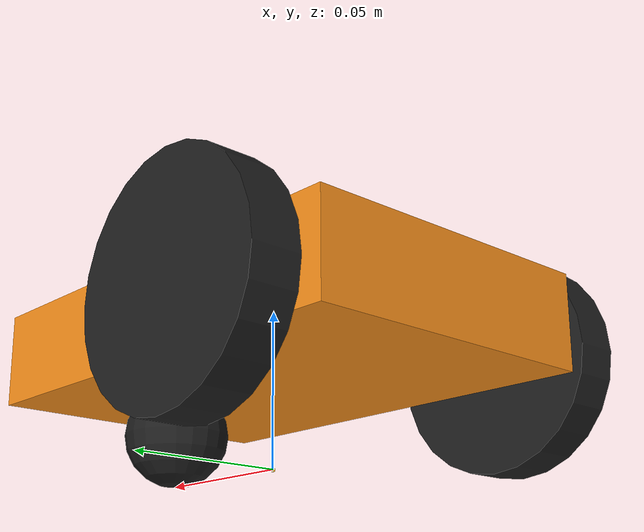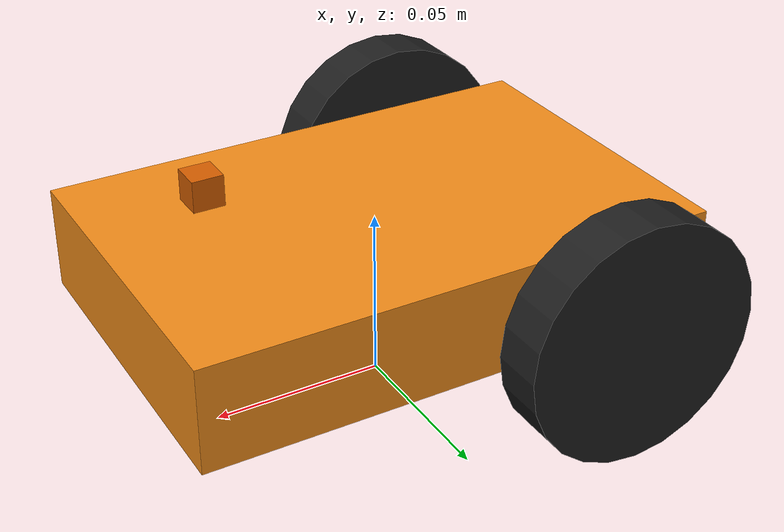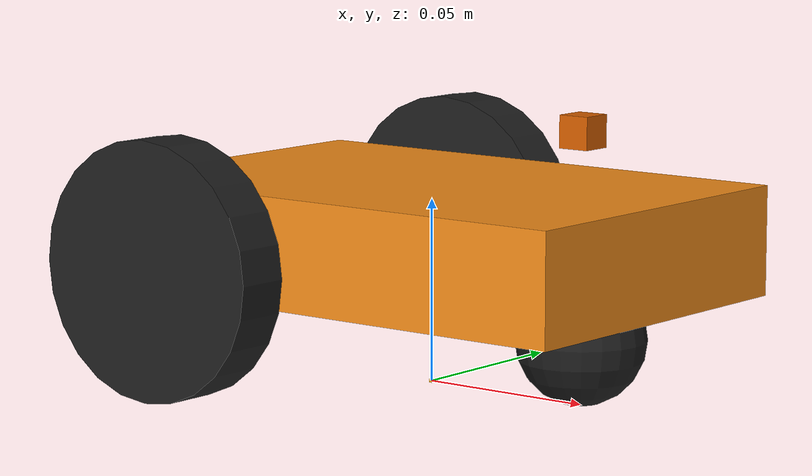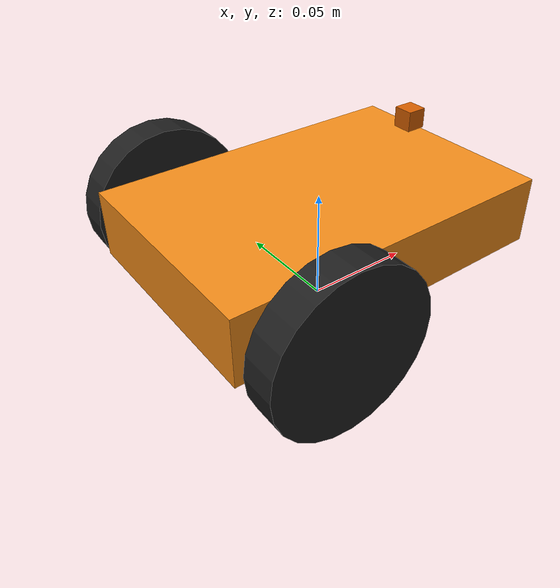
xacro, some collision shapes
<?xml version="1.0"?>
<robot xmlns:xacro="http://www.ros.org/wiki/xacro" name="model">

  <xacro:property name="base_width" value="0.1"/>
  <xacro:property name="base_len" value="0.15"/>
  <xacro:property name="wheel_radius" value="0.035"/>
  <xacro:property name="base_wheel_gap" value="0.007"/>
  <xacro:property name="wheel_separation" value="0.12"/>
  <xacro:property name="wheel_joint_offset" value="0.02"/>

  <xacro:property name="caster_wheel_radius" value="${wheel_radius/2}"/>
  <xacro:property name="caster_wheel_mass" value="0.001"/>
  <xacro:property name="caster_wheel_joint_offset" value="-0.05"/>

  <xacro:include filename="$(find model_description)/urdf/model_urdf.gazebo"/>

  <xacro:macro name="default_inertial" params="mass">
    <inertial>
      <mass value="${mass}"/>
      <inertia ixx="1.0" ixy="0.0" ixz="0.0" iyy="1.0" iyz="0.0" izz="1.0"/>
    </inertial>
  </xacro:macro>

  <xacro:macro name="cylinder_inertia" params="m r h">
    <inertial>
      <mass value="${m}"/>
      <inertia ixx="${m*(3*r*r+h*h)/12}" ixy = "0" ixz = "0" iyy="${m*(3*r*r+h*h)/12}" iyz = "0" izz="${m*r*r/2}"/>
    </inertial>
  </xacro:macro>

  <xacro:macro name="box_inertia" params="m w h d">
    <inertial>
      <mass value="${m}"/>
      <inertia ixx="${m / 12.0 * (d*d + h*h)}" ixy="0.0" ixz="0.0" iyy="${m / 12.0 * (w*w + h*h)}" iyz="0.0" izz="${m / 12.0 * (w*w + d*d)}"/>
    </inertial>
  </xacro:macro>

  <xacro:macro name="sphere_inertia" params="m r">
    <inertial>
      <mass value="${m}"/>
      <inertia ixx="${2.0*m*(r*r)/5.0}" ixy="0.0" ixz="0.0" iyy="${2.0*m*(r*r)/5.0}" iyz="0.0" izz="${2.0*m*(r*r)/5.0}"/>
    </inertial>
  </xacro:macro>

  <link name="base_footprint">
    <xacro:box_inertia m="200" w="0.001" h="0.001" d="0.001"/>
    <visual>
        <origin xyz="0 0 0" rpy="0 0 0" />
        <geometry>
            <box size="0.001 0.001 0.001" />
        </geometry>
    </visual>
  </link>

  <!--Chassis-->
  <link name="base_link">
    <xacro:box_inertia m="10" w="${base_len}" h="${base_width}" d="0.03"/>
    <visual>
      <geometry>
        <box size="${base_len} ${base_width} 0.03"/>
      </geometry>
    </visual>
    <collision>
      <geometry>
        <box size="${base_len} ${base_width} 0.03"/>
      </geometry>
    </collision>
  </link>

  <joint name="base_link_joint" type="fixed">
    <origin xyz="0 0 ${wheel_radius + 0.005}" rpy="0 0 0" />
    <parent link="base_footprint"/>
    <child link="base_link" />
  </joint>

  <!--Both wheels-->
  <xacro:macro name="wheel" params="prefix reflect">
    <link name="${prefix}_wheel">
      <visual>
        <origin xyz="0 0 0" rpy="${pi/2} 0 0"/>
        <geometry>
          <cylinder radius="${wheel_radius}" length="0.015"/>
        </geometry>
      </visual>
      <collision>
        <origin xyz="0 0 0" rpy="${pi/2} 0 0"/>
        <geometry>
          <cylinder radius="${wheel_radius}" length="0.015"/>
        </geometry>
      </collision>
      <xacro:cylinder_inertia m="10" r="${wheel_radius}" h="0.015"/>
    </link>

    <joint name="${prefix}_wheel_joint" type="continuous">
      <axis xyz="0 1 0" rpy="0 0 0" />
      <parent link="base_link"/>
      <child link="${prefix}_wheel"/>
      <origin xyz="-${wheel_joint_offset*2} ${((base_width/2)+base_wheel_gap/2+0.01)*reflect} -0.005" rpy="0 0 0"/>
    </joint>
  </xacro:macro>

  <xacro:wheel prefix="left" reflect="1"/>
  <xacro:wheel prefix="right" reflect="-1"/>

  <!--Caster Wheel-->
  <link name="caster_wheel">
    <visual>
      <origin xyz="0 0 0" rpy="0 0 0"/>
      <geometry>
        <sphere radius="${caster_wheel_radius}"/>
      </geometry>
    </visual>
    <collision>
      <origin xyz="0 0 0" rpy="0 0 0"/>
      <geometry>
        <sphere radius="${caster_wheel_radius}"/>
      </geometry>
    </collision>
    <xacro:sphere_inertia m="5" r="${caster_wheel_radius}"/>
  </link>

  <joint name="caster_wheel_joint" type="continuous">
    <axis xyz="0 1 0" rpy="0 0 0" />
    <parent link="base_link"/>
    <child link="caster_wheel"/>
    <origin xyz="0.05 0 -${caster_wheel_radius+0.005}" rpy="0 0 0"/>
  </joint>

  <joint name="hokuyo_joint" type="fixed">
    <axis xyz="0 1 0" />
    <origin xyz="0.05 0 ${caster_wheel_radius+0.015}" rpy="0 0 0"/>
    <parent link="base_link"/>
    <child link="hokuyo_link"/>
  </joint>

  <!--Hokuyo Laser-->
  <link name="hokuyo_link">
    <collision>
      <origin xyz="0 0 0" rpy="0 0 0"/>
      <geometry>
  <box size="${caster_wheel_radius/2} ${caster_wheel_radius/2} ${caster_wheel_radius/2}"/>
      </geometry>
    </collision>

    <visual>
      <origin xyz="0 0 0" rpy="0 0 0"/>
      <geometry>
        <mesh filename="package://model_description/meshes/hokuyo.dae"/>
      </geometry>
    </visual>

    <inertial>
      <mass value="1e-5" />
      <origin xyz="0 0 0" rpy="0 0 0"/>
      <inertia ixx="1e-6" ixy="0" ixz="0" iyy="1e-6" iyz="0" izz="1e-6" />
    </inertial>
  </link>

</robot>
